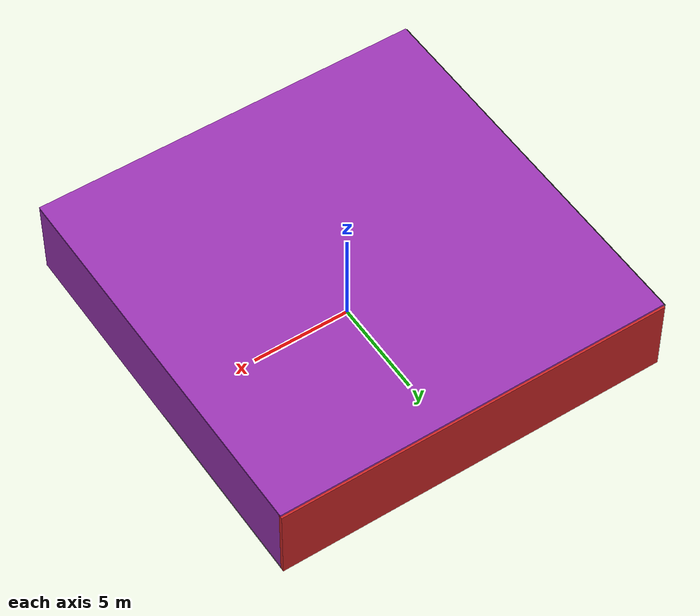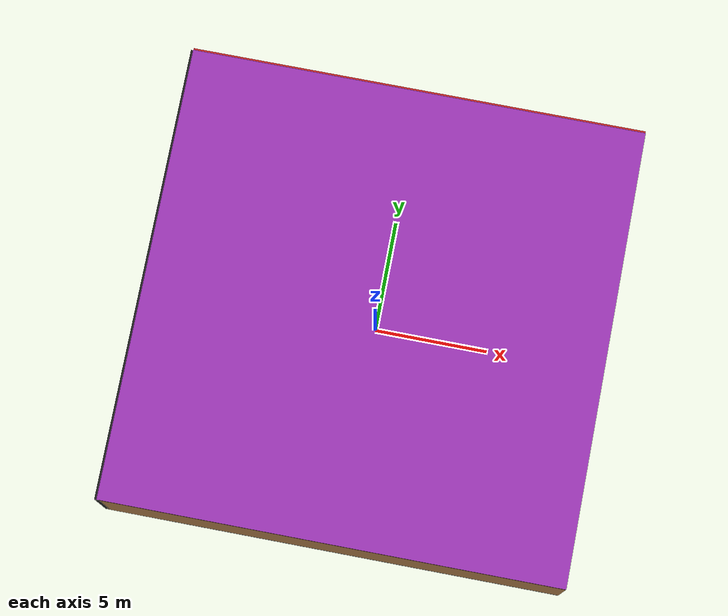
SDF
<sdf version="1.4">
 <world name="default">
  <physics type="ode">
   <max_step_size>0.001</max_step_size>
   <real_time_factor>1</real_time_factor>
   <real_time_update_rate>1000</real_time_update_rate>
   <gravity>0 0 -9.8</gravity>
  </physics>
  <scene><ambient>0.4 0.4 0.4 1</ambient><background>0.7 0.7 0.7 1</background><shadows>1</shadows></scene>
  <model name="Surrounding">
   <static>1</static>
   <link name="Ceiling">
    <collision name="Ceiling_Collision"><geometry><box><size>20 20 0.1</size></box></geometry></collision>
    <visual name="Ceiling_Visual">
     <geometry><box><size>20 20 0.1</size></box></geometry>
     <material>
      <script><uri>file://media/materials/scripts/gazebo.material</uri><name>Gazebo/Purple</name></script>
     </material>
    </visual>
    <pose>0 0 4.05 0 0 0</pose>
   </link>
   <link name="Wall_South">
    <collision name="Wall_South_Collision">
     <geometry><box><size>20 0 4</size></box></geometry>
     <pose>0 0 2 0 -0 0</pose>
    </collision>
    <visual name="Wall_South_Visual">
     <pose>0 0 2 0 -0 0</pose>
     <geometry><box><size>20 0 4</size></box></geometry>
     <material>
      <script><uri>file://media/materials/scripts/gazebo.material</uri><name>Gazebo/WoodPallet</name></script>
     </material>
    </visual>
    <velocity_decay><linear>0</linear><angular>0</angular></velocity_decay>
    <pose>0 -10 0 0 -0 0</pose>
   </link>
   <link name="Wall_East">
    <collision name="Wall_21_Collision">
     <geometry><box><size>20 0 4</size></box></geometry>
     <pose>0 0 2 0 -0 0</pose>
    </collision>
    <visual name="Wall_21_Visual">
     <pose>0 0 2 0 -0 0</pose>
     <geometry><box><size>20 0 4</size></box></geometry>
     <material>
      <script><uri>file://media/materials/scripts/gazebo.material</uri><name>Gazebo/PurpleGlow</name></script>
     </material>
    </visual>
    <velocity_decay><linear>0</linear><angular>0</angular></velocity_decay>
    <pose>10 0 0 0 -0 1.5708</pose>
   </link>
   <link name="Wall_North">
    <collision name="Wall_22_Collision">
     <geometry><box><size>20 0.2 4</size></box></geometry>
     <pose>0 0 2 0 -0 0</pose>
    </collision>
    <visual name="Wall_22_Visual">
     <pose>0 0 2 0 -0 0</pose>
     <geometry><box><size>20 0.2 4</size></box></geometry>
     <material>
      <script><uri>file://media/materials/scripts/gazebo.material</uri><name>Gazebo/RedBright</name></script>
     </material>
    </visual>
    <velocity_decay><linear>0</linear><angular>0</angular></velocity_decay>
    <pose>0 10 0 0 -0 0</pose>
   </link>
   <link name="Wall_West">
    <collision name="Wall_23_Collision">
     <geometry><box><size>20 0.2 4</size></box></geometry>
     <pose>0 0 2 0 -0 0</pose>
    </collision>
    <visual name="Wall_23_Visual">
     <pose>0 0 2 0 -0 0</pose>
     <geometry><box><size>20 0.2 4</size></box></geometry>
     <material>
      <script><uri>file://media/materials/scripts/gazebo.material</uri><name>Gazebo/FlatBlack</name></script>
     </material>
    </visual>
    <velocity_decay><linear>0</linear><angular>0</angular></velocity_decay>
    <pose>-10 0 0 0 0 -1.5708</pose>
   </link>
   <link name="Ground_link">
    <collision name="collision">
     <pose>0 0 .05 0 -0 0</pose>
     <geometry><box><size>20 20 0.1</size></box></geometry>
    </collision>
    <visual name="visual">
     <pose>0 0 .05 0 -0 0</pose>
     <geometry><box><size>20 20 0.1</size></box></geometry>
     <material>
      <script><uri>file://media/materials/scripts/gazebo.material</uri><name>Gazebo/GreyGradientSky</name></script>
     </material>
    </visual>
   </link>
   <static>1</static>
  </model>
  <spherical_coordinates>
   <surface_model>EARTH_WGS84</surface_model>
   <latitude_deg>0</latitude_deg>
   <longitude_deg>0</longitude_deg>
   <elevation>0</elevation>
   <heading_deg>0</heading_deg>
  </spherical_coordinates>
  <light name="lightball_0" type="diffuse">
   <diffuse>0.8 0.8 0.8 1</diffuse>
   <specular>0.2 0.2 0.2 1</specular>
   <attenuation>
    <range>100</range>
    <constant>0.7</constant>
    <linear>0.01</linear>
    <quadratic>0.001</quadratic>
   </attenuation>
   <direction>-0.5 0.1 -0.9</direction>
   <pose>1.50019571235 -6.40113414229 3.23435043236 0 0 0</pose>
  </light>
  <light name="lightball_1" type="diffuse">
   <diffuse>0.8 0.8 0.8 1</diffuse>
   <specular>0.2 0.2 0.2 1</specular>
   <attenuation>
    <range>100</range>
    <constant>0.7</constant>
    <linear>0.01</linear>
    <quadratic>0.001</quadratic>
   </attenuation>
   <direction>-0.5 0.1 -0.9</direction>
   <pose>4.10829390438 2.4519063828 1.47976294286 0 0 0</pose>
  </light>
  <light name="lightball_2" type="diffuse">
   <diffuse>0.8 0.8 0.8 1</diffuse>
   <specular>0.2 0.2 0.2 1</specular>
   <attenuation>
    <range>100</range>
    <constant>0.7</constant>
    <linear>0.01</linear>
    <quadratic>0.001</quadratic>
   </attenuation>
   <direction>-0.5 0.1 -0.9</direction>
   <pose>-2.15233561386 -1.01096977074 2.552494321 0 0 0</pose>
  </light>
  <light name="lightball_3" type="diffuse">
   <diffuse>0.8 0.8 0.8 1</diffuse>
   <specular>0.2 0.2 0.2 1</specular>
   <attenuation>
    <range>100</range>
    <constant>0.7</constant>
    <linear>0.01</linear>
    <quadratic>0.001</quadratic>
   </attenuation>
   <direction>-0.5 0.1 -0.9</direction>
   <pose>6.28620942132 6.85065391249 2.0078955515 0 0 0</pose>
  </light>
  <light name="lightball_4" type="diffuse">
   <diffuse>0.8 0.8 0.8 1</diffuse>
   <specular>0.2 0.2 0.2 1</specular>
   <attenuation>
    <range>100</range>
    <constant>0.7</constant>
    <linear>0.01</linear>
    <quadratic>0.001</quadratic>
   </attenuation>
   <direction>-0.5 0.1 -0.9</direction>
   <pose>8.25755759712 9.94173422428 1.87315898989 0 0 0</pose>
  </light>
  <include><uri>model://cabinet</uri><pose>-8.05263265101 8.20978204858 0 0 0 2.14227708831</pose></include>
  <include><uri>model://cabinet</uri><pose>-1.97420501045 -4.03188181627 0 0 0 2.55898977422</pose></include>
  <include>
   <uri>model://construction_cone</uri>
   <pose>1.75568299183 -2.10153939066 0 0 0 0.324822598085</pose>
  </include>
  <include>
   <uri>model://construction_cone</uri>
   <pose>5.05745999215 -0.895997558024 0 0 0 0.454420392131</pose>
  </include>
  <include><uri>model://cabinet</uri><pose>5.14650893925 6.47102786082 0 0 0 0.305196677783</pose></include>
  <include>
   <uri>model://robocup_3Dsim_goal</uri>
   <pose>7.94256242935 -0.68383595639 0 0 0 2.33194544843</pose>
  </include>
 </world>
</sdf>

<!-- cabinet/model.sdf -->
<sdf version="1.5">
  <model name="cabinet">
    <static>true</static>
    <link name="cabinet_bottom_plate">
      <inertial>
        <pose>0 0 -1 0 0 0</pose>
        <inertia>
          <ixx>2.050000</ixx>
          <ixy>0</ixy>
          <ixz>0</ixz>
          <iyy>2.050000</iyy>
          <iyz>0</iyz>
          <izz>2.050000</izz>
        </inertia>
        <mass>25.000000</mass>
      </inertial>
      <collision name="cabinet_bottom_plate_geom">
        <pose>0 0 0.010000 0 0 0</pose>
        <geometry>
          <box>
            <size>0.450000 0.450000 0.020000</size>
          </box>
        </geometry>
      </collision>
      <visual name="cabinet_bottom_plate_geom_visual">
        <pose>0 0 0.010000 0 0 0</pose>
        <geometry>
          <box>
            <size>0.450000 0.450000 0.020000</size>
          </box>
        </geometry>
        <material>
          <script>
            <uri>model://media/materials/scripts/gazebo.material</uri>
            <name>Gazebo/Wood</name>
          </script>
        </material>
      </visual>
      <collision name="cabinet_bottom_plate_geom_cabinet_back_plate">
        <pose>0.235000 0 0.510000 0 0 0</pose>
        <geometry>
          <box>
            <size>0.020000 0.450000 1.020000</size>
          </box>
        </geometry>
      </collision>
      <visual name="cabinet_bottom_plate_geom_cabinet_back_plate_visual">
        <pose>0.235000 0 0.510000 0 0 0</pose>
        <geometry>
          <box>
            <size>0.020000 0.450000 1.020000</size>
          </box>
        </geometry>
        <material>
          <script>
            <uri>model://media/materials/scripts/gazebo.material</uri>
            <name>Gazebo/Wood</name>
          </script>
        </material>
      </visual>
      <collision name="cabinet_bottom_plate_geom_cabinet_left_plate">
        <pose>0 0.235000 0.510000 0 0 0</pose>
        <geometry>
          <box>
            <size>0.450000 0.020000 1.020000</size>
          </box>
        </geometry>
      </collision>
      <visual name="cabinet_bottom_plate_geom_cabinet_left_plate_visual">
        <pose>0 0.235000 0.510000 0 0 0</pose>
        <geometry>
          <box>
            <size>0.450000 0.020000 1.020000</size>
          </box>
        </geometry>
        <material>
          <script>
            <uri>model://media/materials/scripts/gazebo.material</uri>
            <name>Gazebo/Wood</name>
          </script>
        </material>
      </visual>
      <collision name="cabinet_bottom_plate_geom_cabinet_middle_plate">
        <pose>0 0 0.510000 0 0 0</pose>
        <geometry>
          <box>
            <size>0.450000 0.450000 0.020000</size>
          </box>
        </geometry>
      </collision>
      <visual name="cabinet_bottom_plate_geom_cabinet_middle_plate_visual">
        <pose>0 0 0.510000 0 0 0</pose>
        <geometry>
          <box>
            <size>0.450000 0.450000 0.020000</size>
          </box>
        </geometry>
        <material>
          <script>
            <uri>model://media/materials/scripts/gazebo.material</uri>
            <name>Gazebo/Wood</name>
          </script>
        </material>
      </visual>
      <collision name="cabinet_bottom_plate_geom_cabinet_right_plate">
        <pose>0 -0.235000 0.510000 0 0 0</pose>
        <geometry>
          <box>
            <size>0.450000 0.020000 1.020000</size>
          </box>
        </geometry>
      </collision>
      <visual name="cabinet_bottom_plate_geom_cabinet_right_plate_visual">
        <pose>0 -0.235000 0.510000 0 0 0</pose>
        <geometry>
          <box>
            <size>0.450000 0.020000 1.020000</size>
          </box>
        </geometry>
        <material>
          <script>
            <uri>model://media/materials/scripts/gazebo.material</uri>
            <name>Gazebo/Wood</name>
          </script>
        </material>
      </visual>
      <collision name="cabinet_bottom_plate_geom_cabinet_top_plate">
        <pose>0 0 1.010000 0 0 0</pose>
        <geometry>
          <box>
            <size>0.450000 0.450000 0.020000</size>
          </box>
        </geometry>
      </collision>
      <visual name="cabinet_bottom_plate_geom_cabinet_top_plate_visual">
        <pose>0 0 1.010000 0 0 0</pose>
        <geometry>
          <box>
            <size>0.450000 0.450000 0.020000</size>
          </box>
        </geometry>
        <material>
          <script>
            <uri>model://media/materials/scripts/gazebo.material</uri>
            <name>Gazebo/Wood</name>
          </script>
        </material>
      </visual>
    </link>
  </model>
</sdf>

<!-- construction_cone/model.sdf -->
<sdf version="1.5">
  <model name="Construction Cone">
    <link name="link">
      <collision name="collision">
        <geometry>
          <mesh>
            <scale>10 10 10</scale>
            <uri>file://isr-testbed/construction_cone/meshes/construction_cone.dae</uri>
          </mesh>
        </geometry>
      </collision>
      <visual name="visual">
        <geometry>
          <mesh>
            <scale>10 10 10</scale>
            <uri>file://isr-testbed/construction_cone/meshes/construction_cone.dae</uri>
          </mesh>
        </geometry>
      </visual>
    </link>
  </model>
</sdf>

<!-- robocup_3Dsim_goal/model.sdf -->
<sdf version="1.5">
  <model name="robocup_3d_goal">
    <static>true</static>
    <link name="left_post">
      <pose>0 1.05 0.45 0 0 0</pose>
      <collision name="collision">
        <geometry>
          <cylinder>
            <radius>0.05</radius>
            <length>0.9</length>
          </cylinder>
        </geometry>
      </collision>
      <visual name="visual">
        <geometry>
          <cylinder>
            <radius>0.05</radius>
            <length>0.9</length>
          </cylinder>
        </geometry>
        <material>
          <script>
            <uri>file://media/materials/scripts/gazebo.material</uri>
            <name>Gazebo/ZincYellow</name>
          </script>
        </material>
      </visual>
    </link>
    <link name="left_support_horiz_lower">
      <pose>0.30 1.05 0.01 0 0 0</pose>
      <collision name="collision">
        <geometry>
          <box>
            <size>0.50 0.02 0.02</size>
          </box>
        </geometry>
      </collision>
      <visual name="visual">
        <geometry>
          <box>
            <size>0.50 0.02 0.02</size>
          </box>
        </geometry>
        <material>
          <script>
            <uri>file://media/materials/scripts/gazebo.material</uri>
            <name>Gazebo/White</name>
          </script>
        </material>
      </visual>
    </link>
    <link name="left_support_horiz_upper">
      <pose>0.30 1.05 0.79 0 0 0</pose>
      <collision name="collision">
        <geometry>
          <box>
            <size>0.50 0.02 0.02</size>
          </box>
        </geometry>
      </collision>
      <visual name="visual">
        <geometry>
          <box>
            <size>0.50 0.02 0.02</size>
          </box>
        </geometry>
        <material>
          <script>
            <uri>file://media/materials/scripts/gazebo.material</uri>
            <name>Gazebo/White</name>
          </script>
        </material>
      </visual>
    </link>
    <link name="left_support_vertical">
      <pose>0.56 1.05 0.4 0 1.5708 0</pose>
      <collision name="collision">
        <geometry>
          <box>
            <size>0.80 0.02 0.02</size>
          </box>
        </geometry>
      </collision>
      <visual name="visual">
        <geometry>
          <box>
            <size>0.80 0.02 0.02</size>
          </box>
        </geometry>
        <material>
          <script>
            <uri>file://media/materials/scripts/gazebo.material</uri>
            <name>Gazebo/White</name>
          </script>
        </material>
      </visual>
    </link>
    <link name="right_support_horiz_lower">
      <pose>0.30 -1.05 0.01 0 0 0</pose>
      <collision name="collision">
        <geometry>
          <box>
            <size>0.50 0.02 0.02</size>
          </box>
        </geometry>
      </collision>
      <visual name="visual">
        <geometry>
          <box>
            <size>0.50 0.02 0.02</size>
          </box>
        </geometry>
        <material>
          <script>
            <uri>file://media/materials/scripts/gazebo.material</uri>
            <name>Gazebo/White</name>
          </script>
        </material>
      </visual>
    </link>
    <link name="right_support_horiz_upper">
      <pose>0.30 -1.05 0.79 0 0 0</pose>
      <collision name="collision">
        <geometry>
          <box>
            <size>0.50 0.02 0.02</size>
          </box>
        </geometry>
      </collision>
      <visual name="visual">
        <geometry>
          <box>
            <size>0.50 0.02 0.02</size>
          </box>
        </geometry>
        <material>
          <script>
            <uri>file://media/materials/scripts/gazebo.material</uri>
            <name>Gazebo/White</name>
          </script>
        </material>
      </visual>
    </link>
    <link name="right_support_vertical">
      <pose>0.56 -1.05 0.4 0 1.5708 0</pose>
      <collision name="collision">
        <geometry>
          <box>
            <size>0.80 0.02 0.02</size>
          </box>
        </geometry>
      </collision>
      <visual name="visual">
        <geometry>
          <box>
            <size>0.80 0.02 0.02</size>
          </box>
        </geometry>
        <material>
          <script>
            <uri>file://media/materials/scripts/gazebo.material</uri>
            <name>Gazebo/White</name>
          </script>
        </material>
      </visual>
    </link>
    <link name="center_support_horiz_lower">
      <pose>0.56 0 0.01 0 1.5708 0</pose>
      <collision name="collision">
        <geometry>
          <box>
            <size>0.02 2.08 0.02</size>
          </box>
        </geometry>
      </collision>
      <visual name="visual">
        <geometry>
          <box>
            <size>0.02 2.08 0.02</size>
          </box>
        </geometry>
        <material>
          <script>
            <uri>file://media/materials/scripts/gazebo.material</uri>
            <name>Gazebo/White</name>
          </script>
        </material>
      </visual>
    </link>
    <link name="center_support_horiz_upper">
      <pose>0.56 0 0.79 0 1.5708 0</pose>
      <collision name="collision">
        <geometry>
          <box>
            <size>0.02 2.08 0.02</size>
          </box>
        </geometry>
      </collision>
      <visual name="visual">
        <geometry>
          <box>
            <size>0.02 2.08 0.02</size>
          </box>
        </geometry>
        <material>
          <script>
            <uri>file://media/materials/scripts/gazebo.material</uri>
            <name>Gazebo/White</name>
          </script>
        </material>
      </visual>
    </link>
    <link name="right_post">
      <pose>0 -1.05 0.45 0 0 0</pose>
      <collision name="collision">
        <geometry>
          <cylinder>
            <radius>0.05</radius>
            <length>0.9</length>
          </cylinder>
        </geometry>
      </collision>
      <visual name="visual">
        <geometry>
          <cylinder>
            <radius>0.05</radius>
            <length>0.9</length>
          </cylinder>
        </geometry>
        <material>
          <script>
            <uri>file://media/materials/scripts/gazebo.material</uri>
            <name>Gazebo/ZincYellow</name>
          </script>
        </material>
      </visual>
    </link>
    <link name="crossbar">
      <pose>0 0 0.85 1.57 1.57 0</pose>
      <collision name="collision">
        <geometry>
          <cylinder>
            <radius>0.05</radius>
            <length>2.0</length>
          </cylinder>
        </geometry>
      </collision>
      <visual name="visual">
        <geometry>
          <cylinder>
            <radius>0.05</radius>
            <length>2.0</length>
          </cylinder>
        </geometry>
        <material>
          <script>
            <uri>file://media/materials/scripts/gazebo.material</uri>
            <name>Gazebo/ZincYellow</name>
          </script>
        </material>
      </visual>
    </link>
    <link name="center_net">
      <pose>0.56 0 0.40 0 0 0</pose>
      <collision name="collision">
        <geometry>
          <box>
            <size>0.01 2.1 0.80</size>
          </box>
        </geometry>
      </collision>
      <visual name="visual">
        <geometry>
          <box>
            <size>0.01 2.1 0.80</size>
          </box>
        </geometry>
        <material>
          <script>
            <uri>model://../model_source/models/robocup09_spl_field/materials/scripts/</uri>
            <uri>model://../model_source/models/robocup09_spl_field/materials/textures/</uri>
            <name>RoboCup/Net</name>
          </script>
        </material>
      </visual>
    </link>
    <link name="left_net">
      <pose>0.30 1.05 0.40 0 0 0</pose>
      <collision name="collision">
        <geometry>
          <box>
            <size>0.50 0.01 0.76</size>
          </box>
        </geometry>
      </collision>
      <visual name="visual">
        <geometry>
          <box>
            <size>0.50 0.01 0.76</size>
          </box>
        </geometry>
        <material>
          <script>
            <uri>model://../model_source/models/robocup09_spl_field/materials/scripts/</uri>
            <uri>model://../model_source/models/robocup09_spl_field/materials/textures/</uri>
            <name>RoboCup/Net</name>
          </script>
        </material>
      </visual>
    </link>
    <link name="right_net">
      <pose>0.30 -1.05 0.40 0 0 0</pose>
      <collision name="collision">
        <geometry>
          <box>
            <size>0.50 0.01 0.76</size>
          </box>
        </geometry>
      </collision>
      <visual name="visual">
        <geometry>
          <box>
            <size>0.50 0.01 0.76</size>
          </box>
        </geometry>
        <material>
          <script>
            <uri>model://../model_source/models/robocup09_spl_field/materials/scripts/</uri>
            <uri>model://../model_source/models/robocup09_spl_field/materials/textures/</uri>
            <name>RoboCup/Net</name>
          </script>
        </material>
      </visual>
    </link>
  </model>
</sdf>
